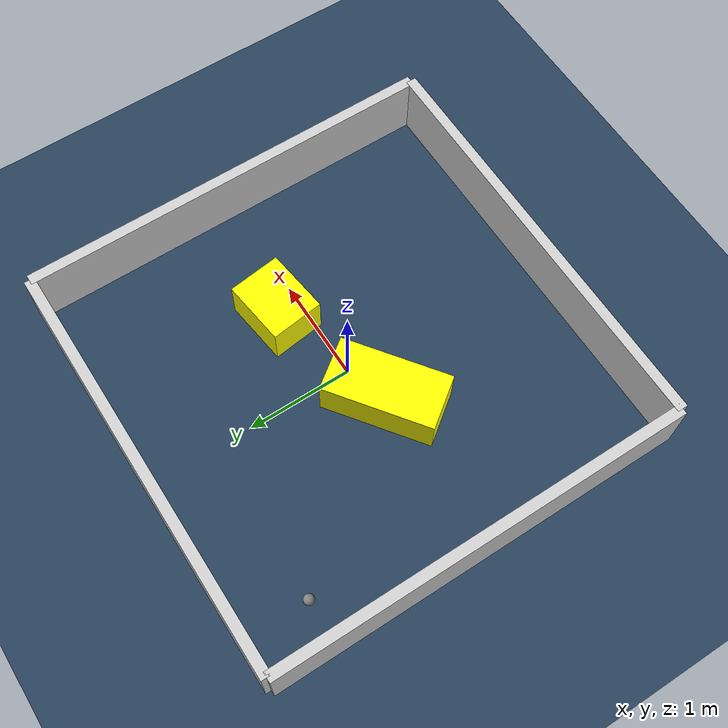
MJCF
<?xml version="1.0" ?>
<mujoco model="generated_environment">
  <option timestep="0.01" integrator="RK4" cone="elliptic"/>
  <default>
    <geom density="1"/>
  </default>
  <asset>
    <texture builtin="gradient" height="3072" rgb1="0.3 0.5 0.7" rgb2="0 0 0" type="skybox" width="512"/>
    <texture builtin="checker" height="300" mark="edge" markrgb="0.8 0.8 0.8" name="groundplane" rgb1="0.2 0.3 0.4" rgb2="0.1 0.2 0.3" type="2d" width="300"/>
    <material name="groundplane" reflectance="0.2" texrepeat="5 5" texture="groundplane" texuniform="true"/>
    <material name="robot" rgba="0.0 1.0 0.0 1"/>
  </asset>
  <worldbody>
    <light dir="0 0 -1" directional="true" pos="0 0 1.5"/>
    <geom condim="4" friction="1.0 0.005 0.001" material="groundplane" name="floor" size="0 0 0.05" type="plane"/>
    <body name="walls">
      <geom name="wall_1" condim="4" pos="-2.0 0.0 0.3" rgba="0.800000011920929 0.800000011920929 0.800000011920929 1.0" size="0.05 2.0 0.3" type="box"/>
      <geom name="wall_2" condim="4" pos="2.0 0.0 0.3" rgba="0.800000011920929 0.800000011920929 0.800000011920929 1.0" size="0.05 2.0 0.3" type="box"/>
      <geom name="wall_3" condim="4" pos="0.0 -2.0 0.3" rgba="0.800000011920929 0.800000011920929 0.800000011920929 1.0" size="2.0 0.05 0.3" type="box"/>
      <geom name="wall_4" condim="4" pos="0.0 2.0 0.3" rgba="0.800000011920929 0.800000011920929 0.800000011920929 1.0" size="2.0 0.05 0.3" type="box"/>
    </body>
    <body name="robot">
      <joint name="joint_x" type="slide" pos="0 0 0" axis="1 0 0"/>
      <joint name="joint_y" type="slide" pos="0 0 0" axis="0 1 0"/>
      <geom name="robot" type="sphere" pos="-1.5895159078082786 1.3862839780756886 0.2" size="0.05" mass="5." friction="1.0 0.005 0.0001" condim="4"/>
      <site name="sensor_ball"/>
    </body>
    <body name="obstacle_1_movable">
      <geom name="obstacle_1_movable" condim="4" pos="-0.41567329303806266 -0.1321965196645709 0.2" euler="0 0 126.41656790164156" friction="1.0 0.005 0.001" rgba="1 1 0 1" size="0.26019031705735984 0.5190249391949342 0.2" type="box" mass="0.1"/>
      <joint type="free"/>
    </body>
    <body name="obstacle_2_movable">
      <geom name="obstacle_2_movable" condim="4" pos="0.8029248322827971 0.23765717741161319 0.2" euler="0 0 277.3587813616936" friction="1.0 0.005 0.001" rgba="1 1 0 1" size="0.25312849457082925 0.31014607356078777 0.2" type="box" mass="0.1"/>
      <joint type="free"/>
    </body>
  </worldbody>
  <actuator>
    <motor name="actuator_x" joint="joint_x" gear="1" ctrlrange="-1 1"/>
    <motor name="actuator_y" joint="joint_y" gear="1" ctrlrange="-1 1"/>
  </actuator>
</mujoco>
